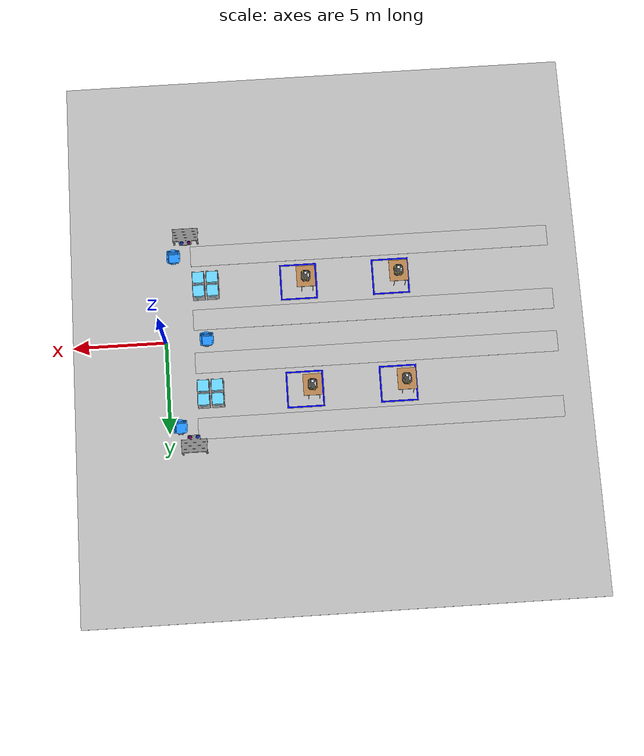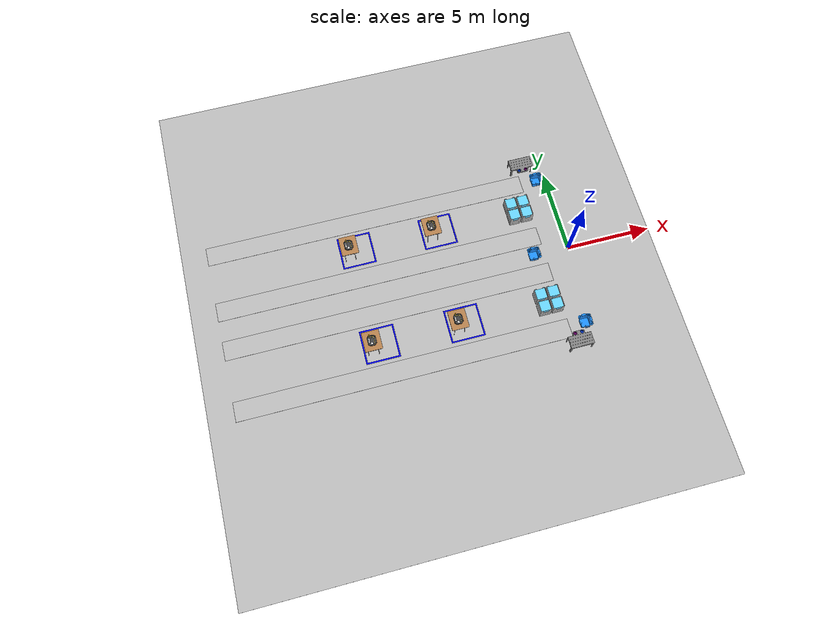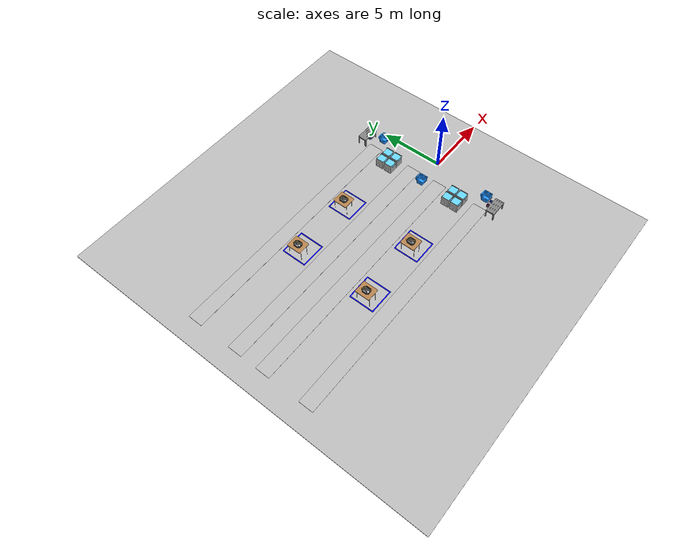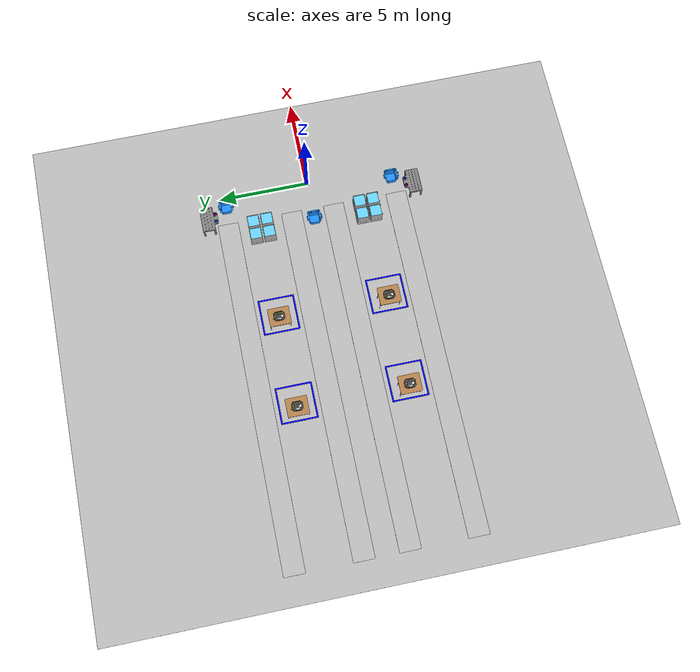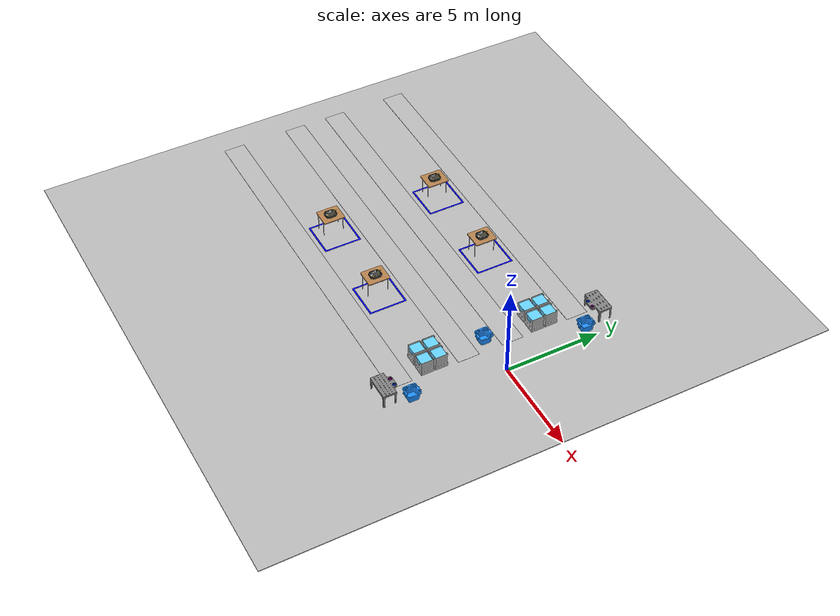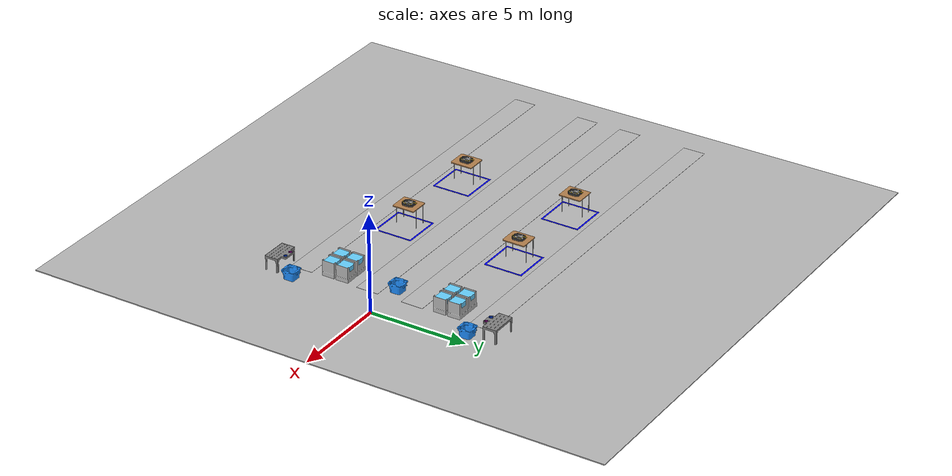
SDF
<sdf version="1.5">
 <world name="world">
  <scene>
   <shadows>0</shadows>
   <grid>0</grid>
   <origin_visual>0</origin_visual>
   <ambient>0.25 0.25 0.25 1</ambient>
   <background>0.6 0.6 0.6 1</background>
  </scene>
  <model name="lights_model">
   <static>1</static>
   <link name="lights_link">
    <light name="bin_light_1" type="point">
     <pose>-2.275 3 2 0 0 0</pose>
     <diffuse>0.4 0.4 0.4 1</diffuse>
     <specular>0.4 0.4 0.4 1</specular>
     <direction>0 0 -1</direction>
     <attenuation>
      <range>20</range>
      <constant>0.5</constant>
      <linear>0.01</linear>
      <quadratic>0.001</quadratic>
     </attenuation>
     <cast_shadows>0</cast_shadows>
    </light>
    <light name="bin_light_2" type="point">
     <pose>-2.275 -3 2 0 0 0</pose>
     <diffuse>0.4 0.4 0.4 1</diffuse>
     <specular>0.4 0.4 0.4 1</specular>
     <direction>0 0 -1</direction>
     <attenuation>
      <range>20</range>
      <constant>0.5</constant>
      <linear>0.01</linear>
      <quadratic>0.001</quadratic>
     </attenuation>
     <cast_shadows>0</cast_shadows>
    </light>
    <light name="conveyor_light_1" type="point">
     <pose>0 0 2 0 0 0</pose>
     <diffuse>0.4 0.4 0.4 1</diffuse>
     <specular>0.4 0.4 0.4 1</specular>
     <direction>0 0 -1</direction>
     <attenuation>
      <range>20</range>
      <constant>0.5</constant>
      <linear>0.01</linear>
      <quadratic>0.001</quadratic>
     </attenuation>
     <cast_shadows>0</cast_shadows>
    </light>
    <light name="assembly_light_1" type="point">
     <pose>-7.3 3 2 0 0 0</pose>
     <diffuse>0.4 0.4 0.4 1</diffuse>
     <specular>0.4 0.4 0.4 1</specular>
     <direction>0 0 -1</direction>
     <attenuation>
      <range>20</range>
      <constant>0.5</constant>
      <linear>0.01</linear>
      <quadratic>0.001</quadratic>
     </attenuation>
     <cast_shadows>0</cast_shadows>
    </light>
    <light name="assembly_light_2" type="point">
     <pose>-12.3 3 2 0 0 0</pose>
     <diffuse>0.4 0.4 0.4 1</diffuse>
     <specular>0.4 0.4 0.4 1</specular>
     <direction>0 0 -1</direction>
     <attenuation>
      <range>20</range>
      <constant>0.5</constant>
      <linear>0.01</linear>
      <quadratic>0.001</quadratic>
     </attenuation>
     <cast_shadows>0</cast_shadows>
    </light>
    <light name="assembly_light_3" type="point">
     <pose>-7.3 -3 2 0 0 0</pose>
     <diffuse>0.4 0.4 0.4 1</diffuse>
     <specular>0.4 0.4 0.4 1</specular>
     <direction>0 0 -1</direction>
     <attenuation>
      <range>20</range>
      <constant>0.5</constant>
      <linear>0.01</linear>
      <quadratic>0.001</quadratic>
     </attenuation>
     <cast_shadows>0</cast_shadows>
    </light>
    <light name="assembly_light_4" type="point">
     <pose>-12.3 -3 2 0 0 0</pose>
     <diffuse>0.4 0.4 0.4 1</diffuse>
     <specular>0.4 0.4 0.4 1</specular>
     <direction>0 0 -1</direction>
     <attenuation>
      <range>20</range>
      <constant>0.5</constant>
      <linear>0.01</linear>
      <quadratic>0.001</quadratic>
     </attenuation>
     <cast_shadows>0</cast_shadows>
    </light>
   </link>
   <plugin name="light_control" filename="libLightMalfunctionPlugin.so">
    <nominal_brightness>40</nominal_brightness>
   </plugin>
  </model>
  <include><name>part_disposal_bin</name><uri>model://disposal_bin</uri><pose>-2.2 0 0 0 0 0</pose></include>
  <include>
   <name>conveyor_disposal_bin1</name>
   <uri>model://disposal_bin</uri>
   <pose>-0.6 -4.72 0 0 0 0</pose>
  </include>
  <include>
   <name>conveyor_disposal_bin2</name>
   <uri>model://disposal_bin</uri>
   <pose>-0.6 4.72 0 0 0 0</pose>
  </include>
  <include><name>workcell_floor</name><uri>model://floor</uri></include>
  <include><name>agv_path_1</name><uri>model://agv_path</uri><pose>-1.5 4.8 0 0 0 0</pose></include>
  <include><name>agv_path_2</name><uri>model://agv_path</uri><pose>-1.5 1.2 0 0 0 0</pose></include>
  <include><name>agv_path_3</name><uri>model://agv_path</uri><pose>-1.5 -1.2 0 0 0 0</pose></include>
  <include><name>agv_path_4</name><uri>model://agv_path</uri><pose>-1.5 -4.8 0 0 0 0</pose></include>
  <include><name>bin1</name><uri>model://parts_bin</uri><pose>-1.9 3.375 0 0 0 3.1416</pose></include>
  <include><name>bin2</name><uri>model://parts_bin</uri><pose>-1.9 2.625 0 0 0 3.1416</pose></include>
  <include><name>bin3</name><uri>model://parts_bin</uri><pose>-2.65 2.625 0 0 0 3.1416</pose></include>
  <include><name>bin4</name><uri>model://parts_bin</uri><pose>-2.65 3.375 0 0 0 3.1416</pose></include>
  <include><name>bin5</name><uri>model://parts_bin</uri><pose>-1.9 -3.375 0 0 0 3.1416</pose></include>
  <include><name>bin6</name><uri>model://parts_bin</uri><pose>-1.9 -2.625 0 0 0 3.1416</pose></include>
  <include><name>bin7</name><uri>model://parts_bin</uri><pose>-2.65 -2.625 0 0 0 3.1416</pose></include>
  <include><name>bin8</name><uri>model://parts_bin</uri><pose>-2.65 -3.375 0 0 0 3.1416</pose></include>
  <include><name>assembly_table_1</name><pose>-7.3 3 0 0 0 0</pose><uri>model://assembly_table</uri></include>
  <include>
   <name>assembly_insert_1</name>
   <pose>-7.7 3 1.011 0 0 0</pose>
   <uri>model://assembly_insert</uri>
  </include>
  <joint name="assembly_insert_1_joint" type="fixed">
   <parent>assembly_table_1::assembly_table_link</parent>
   <child>assembly_insert_1::insert_link</child>
  </joint>
  <include><name>assembly_table_2</name><pose>-12.3 3 0 0 0 0</pose><uri>model://assembly_table</uri></include>
  <include>
   <name>assembly_insert_2</name>
   <pose>-12.7 3 1.011 0 0 0</pose>
   <uri>model://assembly_insert</uri>
  </include>
  <include><name>assembly_table_3</name><pose>-7.3 -3 0 0 0 0</pose><uri>model://assembly_table</uri></include>
  <include>
   <name>assembly_insert_3</name>
   <pose>-7.7 -3 1.011 0 0 0</pose>
   <uri>model://assembly_insert</uri>
  </include>
  <include><name>assembly_table_4</name><pose>-12.3 -3 0 0 0 0</pose><uri>model://assembly_table</uri></include>
  <include>
   <name>assembly_insert_4</name>
   <pose>-12.7 -3 1.011 0 0 0</pose>
   <uri>model://assembly_insert</uri>
  </include>
  <include>
   <name>tray_table_1</name>
   <pose>-1.3 -5.84 0 0 0 3.14159</pose>
   <uri>model://kit_tray_table</uri>
  </include>
  <include><name>tray_table_2</name><pose>-1.3 5.84 0 0 0 0</pose><uri>model://kit_tray_table</uri></include>
 </world>
</sdf>

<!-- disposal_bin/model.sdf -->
<sdf version="1.6">
  <model name="disposal_bin">
    <static>true</static>
    <link name="disposal_bin">

      <collision name='collision'>
        <geometry>
            <mesh>
            <uri>model://disposal_bin/meshes/disposal_bin.stl</uri>
            </mesh>
          </geometry>
      </collision>
      <visual name="visual">
        <geometry>
          <mesh>
            <uri>model://disposal_bin/meshes/disposal_bin.stl</uri>
          </mesh>
        </geometry>
        <material>
          <ambient>0.12 0.56 1.0 1.0</ambient>
          <diffuse>0.12 0.56 1.0 1.0</diffuse>
        </material>
       </visual>

        <sensor type="contact" name="bumper">
          <update_rate>1</update_rate>
          <contact>
            <collision>collision</collision>
          </contact>
      </sensor>
    </link>

    <plugin name="disposal_bin" filename="libObjectDisposalPlugin.so">
      <ros>
      </ros>
      <link_name>disposal_bin</link_name>
      <publish_penalty>false</publish_penalty>
    </plugin>
  </model>
</sdf>

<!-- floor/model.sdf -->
<sdf version='1.6'>
  <model name='floor'>
    <static>true</static>

    <link name="floor">
      <visual name="visual">
        <geometry>
          <mesh>
            <uri>model://floor/meshes/floor.dae</uri>
          </mesh>
        </geometry>
        <plugin name="disable_shadows_plugin" filename="libdisable_shadows_plugin.so">
          <ros>
          </ros>
        </plugin>
      </visual>

      <collision name="collision">
        <surface>
          <friction>
            <ode>
              <mu>1000</mu>
              <mu2>500</mu2>
            </ode>
          </friction>
        </surface>
        <geometry>
          <mesh>
            <uri>model://floor/meshes/floor.dae</uri>
          </mesh>
        </geometry>
      </collision>

      <sensor type="contact" name="bumper">
        <update_rate>1</update_rate>
        <contact>
          <collision>collision</collision>
        </contact>
      </sensor>
    </link>

    <plugin name="floor_part_disposal" filename="libObjectDisposalPlugin.so">
      <ros>
      </ros>
      <link_name>floor</link_name>
      <publish_penalty>true</publish_penalty>
    </plugin>
  </model>
</sdf>

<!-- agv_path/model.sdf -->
<sdf version='1.6'>
  <model name='agv_path'>
    <static>true</static>

    <link name="link">
      <visual name="visual">
        <geometry>
          <mesh>
            <uri>model://agv_path/meshes/path.dae</uri>
          </mesh>
        </geometry>
      </visual>
    </link>
  </model>
</sdf>

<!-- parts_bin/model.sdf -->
<sdf version="1.6">
  <model name="parts_bin">
    <static>true</static>
    <link name="link">
      <visual name="exterior_visual">
        <geometry>
          <mesh>
            <uri>model://parts_bin/meshes/bin_exterior.dae</uri>
          </mesh>
        </geometry>
      </visual>

      <visual name="interior_visual">
        <geometry>
          <mesh>
            <uri>model://parts_bin/meshes/bin_interior.stl</uri>
          </mesh>
        </geometry>
        <material>
          <ambient>0.4 0.82 1.0 1.0</ambient>
          <diffuse>0.4 0.82 1.0 1.0</diffuse>
        </material>
      </visual>

      <collision name="interior_collision">
        <geometry>
          <mesh>
            <uri>model://parts_bin/meshes/bin_interior.stl</uri>
          </mesh>
        </geometry>
      </collision>

      <collision name="exterior_collision">
        <geometry>
          <mesh>
            <uri>model://parts_bin/meshes/bin_exterior.stl</uri>
          </mesh>
        </geometry>
      </collision>

    </link>
  </model>
</sdf>

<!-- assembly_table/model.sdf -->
<sdf version="1.6">
  <model name="assembly_table">
    <static>true</static>

    <link name="assembly_table_link">
      <visual name="table_top">
        <geometry>
          <mesh>
            <uri>model://assembly_table/meshes/table_top.stl</uri>
          </mesh>
        </geometry>
        <material>
          <script>
            <uri>file://media/materials/scripts/gazebo.material</uri>
            <name>Gazebo/Wood</name>
          </script>
        </material>
      </visual>

      <visual name="leg1">
        <geometry>
          <mesh>
            <uri>model://assembly_table/meshes/leg1.stl</uri>
          </mesh>
        </geometry>
        <material>
          <ambient>0.6 0.6 0.6 1.0</ambient>
          <diffuse>0.6 0.6 0.6 1.0</diffuse>
        </material>
      </visual>

      <visual name="leg2">
        <geometry>
          <mesh>
            <uri>model://assembly_table/meshes/leg2.stl</uri>
          </mesh>
        </geometry>
        <material>
          <ambient>0.6 0.6 0.6 1.0</ambient>
          <diffuse>0.6 0.6 0.6 1.0</diffuse>
        </material>
      </visual>

      <visual name="leg3">
        <geometry>
          <mesh>
            <uri>model://assembly_table/meshes/leg3.stl</uri>
          </mesh>
        </geometry>
        <material>
          <ambient>0.6 0.6 0.6 1.0</ambient>
          <diffuse>0.6 0.6 0.6 1.0</diffuse>
        </material>
      </visual>

      <visual name="leg4">
        <geometry>
          <mesh>
            <uri>model://assembly_table/meshes/leg4.stl</uri>
          </mesh>
        </geometry>
        <material>
          <ambient>0.6 0.6 0.6 1.0</ambient>
          <diffuse>0.6 0.6 0.6 1.0</diffuse>
        </material>
      </visual>

      <visual name="tape">
        <geometry>
          <mesh>
            <uri>model://assembly_table/meshes/tape_outline.stl</uri>
          </mesh>
        </geometry>
        <material>
          <ambient>0.0 0.0 1.0 1.0</ambient>
          <diffuse>0.0 0.0 1.0 1.0</diffuse>
        </material>
      </visual>

      <collision name="collision">
        <geometry>
          <mesh>
            <uri>model://assembly_table/meshes/assembly_table_collision.stl</uri>
          </mesh>
        </geometry>
      </collision>

    </link>
  </model>
</sdf>

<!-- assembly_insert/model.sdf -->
<sdf version="1.6">
  <model name="insert">
    <static>true</static>
    <allow_auto_disable>false</allow_auto_disable>

    <kinematic>0</kinematic>
    <inertial>
      <mass>20</mass>
      <inertia>
        <ixx>0.0009</ixx>
        <ixy>0</ixy>
        <ixz>0</ixz>
        <iyy>0.0009</iyy>
        <iyz>0</iyz>
        <izz>0.0012</izz>
      </inertia>
    </inertial>

    <link name="insert_link">
      <visual name="base">
        <geometry>
          <mesh>
            <uri>model://assembly_insert/meshes/insert_base.stl</uri>
          </mesh>
        </geometry>
        <material>
          <ambient>0.25 0.25 0.25 1.0</ambient>
          <diffuse>0.25 0.25 0.25 1.0</diffuse>
        </material>
      </visual>

      <visual name="mounts">
        <geometry>
          <mesh>
            <uri>model://assembly_insert/meshes/mounts.stl</uri>
          </mesh>
        </geometry>
        <material>
          <ambient>0.8 0.8 0.8 1.0</ambient>
          <diffuse>0.8 0.8 0.8 1.0</diffuse>
        </material>
      </visual>

      <visual name="hardware">
        <geometry>
          <mesh>
            <uri>model://assembly_insert/meshes/hardware.stl</uri>
          </mesh>
        </geometry>
        <material>
          <ambient>0.35 0.35 0.35 1.0</ambient>
          <diffuse>0.35 0.35 0.35 1.0</diffuse>
        </material>
      </visual>

      <visual name="pipe_1">
        <geometry>
          <mesh>
            <uri>model://assembly_insert/meshes/pipe_1.stl</uri>
          </mesh>
        </geometry>
        <material>
          <ambient>1.0 0.82 0.10 1.0</ambient>
          <diffuse>1.0 0.82 0.10 1.0</diffuse>
        </material>
      </visual>

      <visual name="pipe_2">
        <geometry>
          <mesh>
            <uri>model://assembly_insert/meshes/pipe_2.stl</uri>
          </mesh>
        </geometry>
        <material>
          <ambient>1.0 0.82 0.10 1.0</ambient>
          <diffuse>1.0 0.82 0.10 1.0</diffuse>
        </material>
      </visual>

      <visual name="screen">
        <geometry>
          <mesh>
            <uri>model://assembly_insert/meshes/screen.stl</uri>
          </mesh>
        </geometry>
        <material>
          <ambient>1.0 1.0 1.0 1.0</ambient>
          <diffuse>1.0 1.0 1.0 1.0</diffuse>
        </material>
      </visual>

      <collision name="base_collision">
        <geometry>
          <mesh>
            <uri>model://assembly_insert/meshes/insert_collision.stl</uri>
          </mesh>
        </geometry>
        <surface>
          <contact>
            <ode>
              <max_vel>0.0</max_vel>
              <min_depth>0.001</min_depth>
            </ode>
          </contact>
        </surface>
      </collision>
    </link>

    <link name="regulator_contact">
      <pose frame=''>0 0 0 0 0 0</pose>
      <collision name="regulator_contact">
        <geometry>
          <mesh>
            <uri>model://assembly_insert/meshes/regulator_contact.stl</uri>
          </mesh>
        </geometry>
        <surface>
          <contact>
            <ode>
              <max_vel>0.0</max_vel>
              <min_depth>0.001</min_depth>
            </ode>
          </contact>
        </surface>
      </collision>

      <sensor type="contact" name="regulator_contact_sensor">
        <update_rate>10</update_rate>
        <contact>
          <collision>regulator_contact</collision>
        </contact>
      </sensor>
    </link>

    <link name="battery_contact">
      <collision name="battery_contact">
        <geometry>
          <mesh>
            <uri>model://assembly_insert/meshes/battery_contact.stl</uri>
          </mesh>
        </geometry>
        <surface>
          <contact>
            <ode>
              <max_vel>0.0</max_vel>
              <min_depth>0.001</min_depth>
            </ode>
          </contact>
        </surface>
      </collision>

      <sensor type="contact" name="battery_contact_sensor">
        <update_rate>10</update_rate>
        <contact>
          <collision>battery_contact</collision>
        </contact>
      </sensor>
    </link>

    <link name="pump_contact">
      <pose>0 0 .002 0 0 0</pose>
      <collision name="pump_contact">
        <geometry>
          <mesh>
            <uri>model://assembly_insert/meshes/pump_contact.stl</uri>
          </mesh>
        </geometry>
        <surface>
          <contact>
            <ode>
              <max_vel>0.0</max_vel>
              <min_depth>0.001</min_depth>
            </ode>
          </contact>
        </surface>
      </collision>

      <sensor type="contact" name="pump_contact_sensor">
        <update_rate>10</update_rate>
        <contact>
          <collision>pump_contact</collision>
        </contact>
      </sensor>
    </link>

    <link name="sensor_contact">
      <collision name="sensor_contact">
        <geometry>
          <mesh>
            <uri>model://assembly_insert/meshes/sensor_contact.stl</uri>
          </mesh>
        </geometry>
        <surface>
          <contact>
            <ode>
              <max_vel>0.0</max_vel>
              <min_depth>0.001</min_depth>
            </ode>
          </contact>
        </surface>
      </collision>

      <sensor type="contact" name="sensor_contact_sensor">
        <update_rate>10</update_rate>
        <contact>
          <collision>sensor_contact</collision>
        </contact>
      </sensor>
    </link>

    <plugin filename="libassembly_lock_plugin.so" name="assembly_lock_pump">
      <assembly_part_type>pump</assembly_part_type>
    </plugin>
    <plugin filename="libassembly_lock_plugin.so" name="assembly_lock_regulator">
      <assembly_part_type>regulator</assembly_part_type>
    </plugin>
    <plugin filename="libassembly_lock_plugin.so" name="assembly_lock_sensor">
      <assembly_part_type>sensor</assembly_part_type>
    </plugin>
    <plugin filename="libassembly_lock_plugin.so" name="assembly_lock_battery">
      <assembly_part_type>battery</assembly_part_type>
    </plugin>
    <plugin filename="libassembly_state_publisher.so" name="assembly_state_publisher">
      <ros></ros>
    </plugin>
  </model>
</sdf>

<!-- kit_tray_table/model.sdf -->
<sdf version="1.6">
  <model name="kit_tray_table">
    <static>true</static>

    <link name="kit_tray_table_link">
      <visual name="table">
        <geometry>
          <mesh>
            <uri>model://kit_tray_table/meshes/kit_tray_table.stl</uri>
          </mesh>
        </geometry>
        <material>
          <ambient>0.5 0.5 0.5 1.0</ambient>
          <diffuse>0.5 0.5 0.5 1.0</diffuse>
        </material>
      </visual>

      <visual name="tool_changer_1">
        <geometry>
          <mesh>
            <uri>model://kit_tray_table/meshes/tool_changer_1.stl</uri>
          </mesh>
        </geometry>
        <material>
          <ambient>0.00 0.18 0.70 1.0</ambient>
          <diffuse>0.00 0.18 0.70 1.0</diffuse>
        </material>
      </visual>

      <visual name="tool_changer_2">
        <geometry>
          <mesh>
            <uri>model://kit_tray_table/meshes/tool_changer_2.stl</uri>
          </mesh>
        </geometry>
        <material>
          <ambient>0.4 0.0 0.4 1.0</ambient>
          <diffuse>0.4 0.0 0.4 1.0</diffuse>
        </material>
      </visual>

      <collision name="table_exterior">
        <geometry>
          <mesh>
            <uri>model://kit_tray_table/meshes/table_collision.stl</uri>
          </mesh>
        </geometry>
      </collision>

      <collision name="table_top">
        <pose>0 0 0.7 0 0 0</pose>
        <geometry>
          <box>
            <size>1.34 0.68 0.05</size>
          </box>
        </geometry>
      </collision>

      <collision name="tool_changer_1_collision">
        <geometry>
          <mesh>
            <uri>model://kit_tray_table/meshes/tool_changer_1.stl</uri>
          </mesh>
        </geometry>
      </collision>

      <collision name="tool_changer_2_collision">
        <geometry>
          <mesh>
            <uri>model://kit_tray_table/meshes/tool_changer_2.stl</uri>
          </mesh>
        </geometry>
      </collision>

    </link>
  </model>
</sdf>
